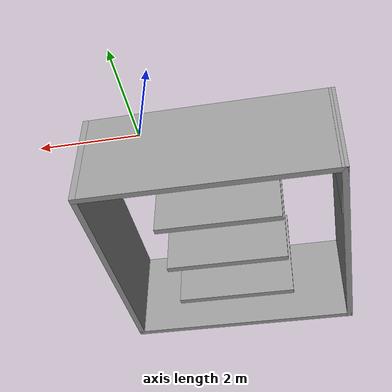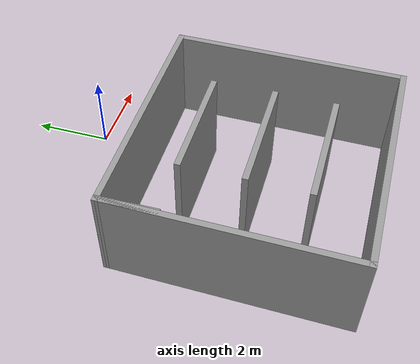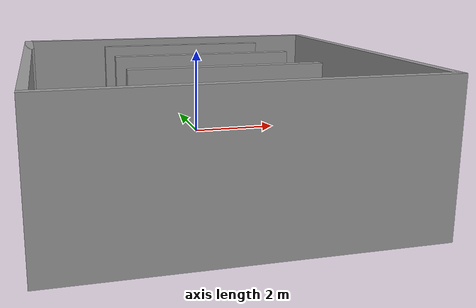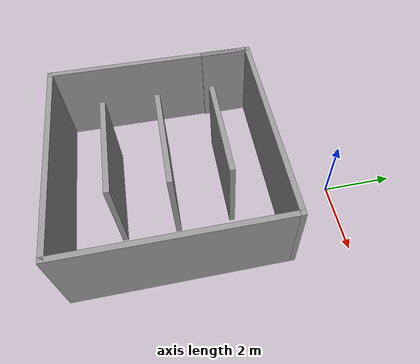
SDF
<?xml version='1.0'?>
<sdf version='1.7'>
  <model name='1.5m_Wide_Shop_Layout'>
    <pose>-0.97919 -3.78663 0 0 -0 0</pose>
    <link name='Wall_182'>
      <collision name='Wall_182_Collision'>
        <geometry>
          <box>
            <size>6 0.15 2.5</size>
          </box>
        </geometry>
        <pose>0 0 1.25 0 -0 0</pose>
      </collision>
      <visual name='Wall_182_Visual'>
        <pose>0 0 1.25 0 -0 0</pose>
        <geometry>
          <box>
            <size>6 0.15 2.5</size>
          </box>
        </geometry>
        <material>
          <script>
            <uri>file://media/materials/scripts/gazebo.material</uri>
            <name>Gazebo/Grey</name>
          </script>
          <ambient>1 1 1 1</ambient>
        </material>
        <meta>
          <layer>0</layer>
        </meta>
      </visual>
      <pose>0.00095 -3.71163 0 0 -0 0</pose>
    </link>
    <link name='Wall_183'>
      <collision name='Wall_183_Collision'>
        <geometry>
          <box>
            <size>6 0.15 2.5</size>
          </box>
        </geometry>
        <pose>0 0 1.25 0 -0 0</pose>
      </collision>
      <visual name='Wall_183_Visual'>
        <pose>0 0 1.25 0 -0 0</pose>
        <geometry>
          <box>
            <size>6 0.15 2.5</size>
          </box>
        </geometry>
        <material>
          <script>
            <uri>file://media/materials/scripts/gazebo.material</uri>
            <name>Gazebo/Grey</name>
          </script>
          <ambient>1 1 1 1</ambient>
        </material>
        <meta>
          <layer>0</layer>
        </meta>
      </visual>
      <pose>2.92595 -0.786626 0 0 -0 1.5708</pose>
    </link>
    <link name='Wall_184'>
      <collision name='Wall_184_Collision'>
        <geometry>
          <box>
            <size>6 0.15 2.5</size>
          </box>
        </geometry>
        <pose>0 0 1.25 0 -0 0</pose>
      </collision>
      <visual name='Wall_184_Visual'>
        <pose>0 0 1.25 0 -0 0</pose>
        <geometry>
          <box>
            <size>6 0.15 2.5</size>
          </box>
        </geometry>
        <material>
          <script>
            <uri>file://media/materials/scripts/gazebo.material</uri>
            <name>Gazebo/Grey</name>
          </script>
          <ambient>1 1 1 1</ambient>
        </material>
        <meta>
          <layer>0</layer>
        </meta>
      </visual>
      <pose>0.00095 2.13837 0 0 -0 3.14159</pose>
    </link>
    <link name='Wall_185'>
      <collision name='Wall_185_Collision'>
        <geometry>
          <box>
            <size>6 0.15 2.5</size>
          </box>
        </geometry>
        <pose>0 0 1.25 0 -0 0</pose>
      </collision>
      <visual name='Wall_185_Visual'>
        <pose>0 0 1.25 0 -0 0</pose>
        <geometry>
          <box>
            <size>6 0.15 2.5</size>
          </box>
        </geometry>
        <material>
          <script>
            <uri>file://media/materials/scripts/gazebo.material</uri>
            <name>Gazebo/Grey</name>
          </script>
          <ambient>1 1 1 1</ambient>
        </material>
        <meta>
          <layer>0</layer>
        </meta>
      </visual>
      <pose>-2.92405 -0.786626 0 0 -0 -1.5708</pose>
    </link>
    <link name='Wall_190'>
      <collision name='Wall_190_Collision'>
        <geometry>
          <box>
            <size>1.5 0.15 2.5</size>
          </box>
        </geometry>
        <pose>0 0 1.25 0 -0 0</pose>
      </collision>
      <visual name='Wall_190_Visual'>
        <pose>0 0 1.25 0 -0 0</pose>
        <geometry>
          <box>
            <size>1.5 0.15 2.5</size>
          </box>
        </geometry>
        <material>
          <script>
            <uri>file://media/materials/scripts/gazebo.material</uri>
            <name>Gazebo/Grey</name>
          </script>
          <ambient>1 1 1 1</ambient>
        </material>
        <meta>
          <layer>0</layer>
        </meta>
      </visual>
      <pose>-2.90666 1.46337 0 0 -0 -1.54504</pose>
    </link>
    <link name='Wall_192'>
      <collision name='Wall_192_Collision'>
        <geometry>
          <box>
            <size>2.96522 0.15 2.5</size>
          </box>
        </geometry>
        <pose>0 0 1.25 0 -0 0</pose>
      </collision>
      <visual name='Wall_192_Visual'>
        <pose>0 0 1.25 0 -0 0</pose>
        <geometry>
          <box>
            <size>2.96522 0.15 2.5</size>
          </box>
        </geometry>
        <material>
          <script>
            <uri>file://media/materials/scripts/gazebo.material</uri>
            <name>Gazebo/Grey</name>
          </script>
          <ambient>1 1 1 1</ambient>
        </material>
        <meta>
          <layer>0</layer>
        </meta>
      </visual>
      <pose>-0.036006 0.788374 0 0 -0 0</pose>
    </link>
    <link name='Wall_194'>
      <collision name='Wall_194_Collision'>
        <geometry>
          <box>
            <size>3 0.15 2.5</size>
          </box>
        </geometry>
        <pose>0 0 1.25 0 -0 0</pose>
      </collision>
      <visual name='Wall_194_Visual'>
        <pose>0 0 1.25 0 -0 0</pose>
        <geometry>
          <box>
            <size>3 0.15 2.5</size>
          </box>
        </geometry>
        <material>
          <script>
            <uri>file://media/materials/scripts/gazebo.material</uri>
            <name>Gazebo/Grey</name>
          </script>
          <ambient>1 1 1 1</ambient>
        </material>
        <meta>
          <layer>0</layer>
        </meta>
      </visual>
      <pose>0.000104 -0.76177 0 0 -0 0</pose>
    </link>
    <link name='Wall_196'>
      <collision name='Wall_196_Collision'>
        <geometry>
          <box>
            <size>3 0.15 2.5</size>
          </box>
        </geometry>
        <pose>0 0 1.25 0 -0 0</pose>
      </collision>
      <visual name='Wall_196_Visual'>
        <pose>0 0 1.25 0 -0 0</pose>
        <geometry>
          <box>
            <size>3 0.15 2.5</size>
          </box>
        </geometry>
        <material>
          <script>
            <uri>file://media/materials/scripts/gazebo.material</uri>
            <name>Gazebo/Grey</name>
          </script>
          <ambient>1 1 1 1</ambient>
        </material>
        <meta>
          <layer>0</layer>
        </meta>
      </visual>
      <pose>-0.008592 -2.26612 0 0 -0 0</pose>
    </link>
    <static>1</static>
  </model>
</sdf>
